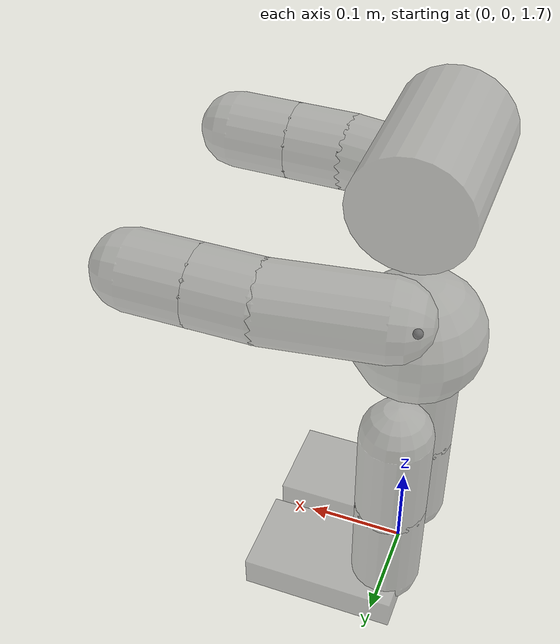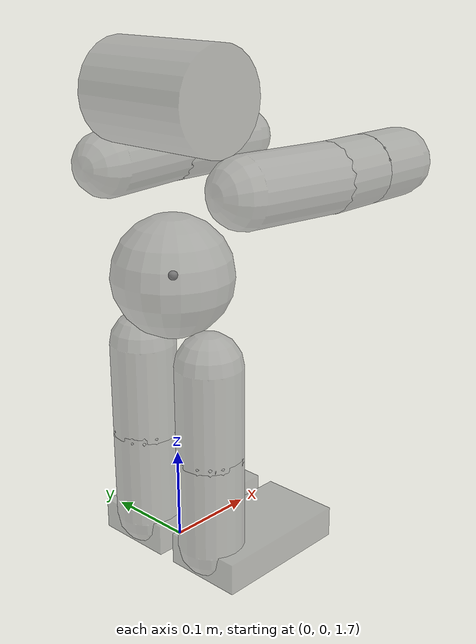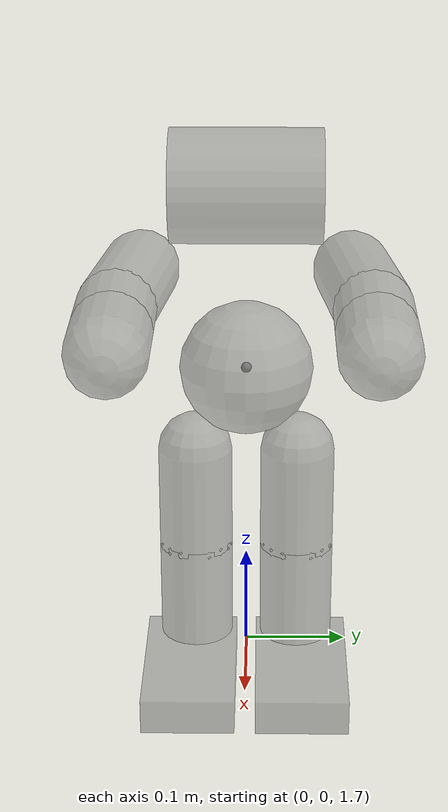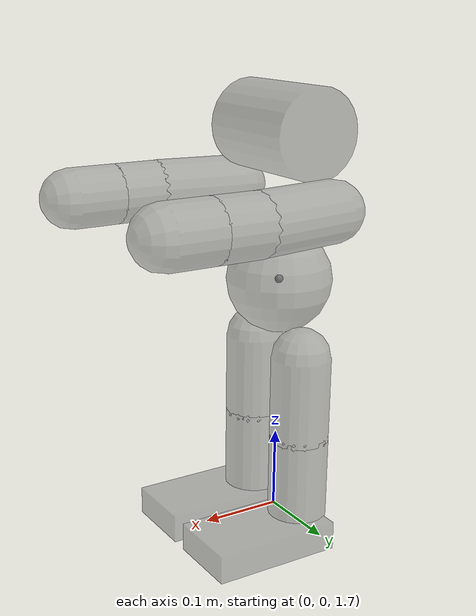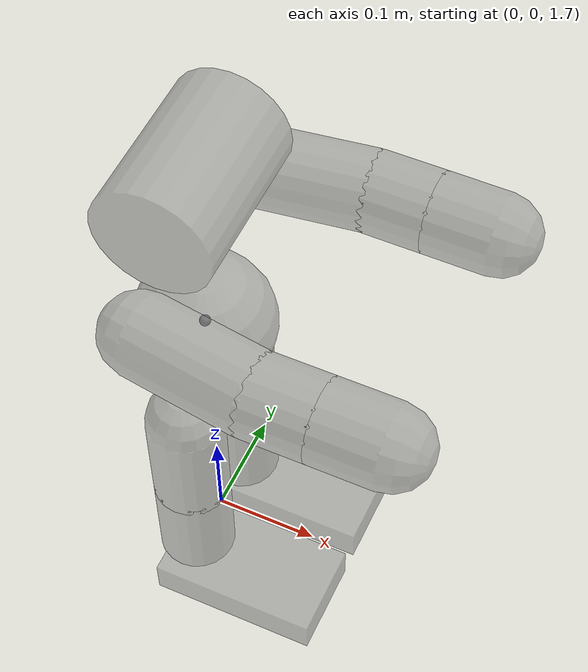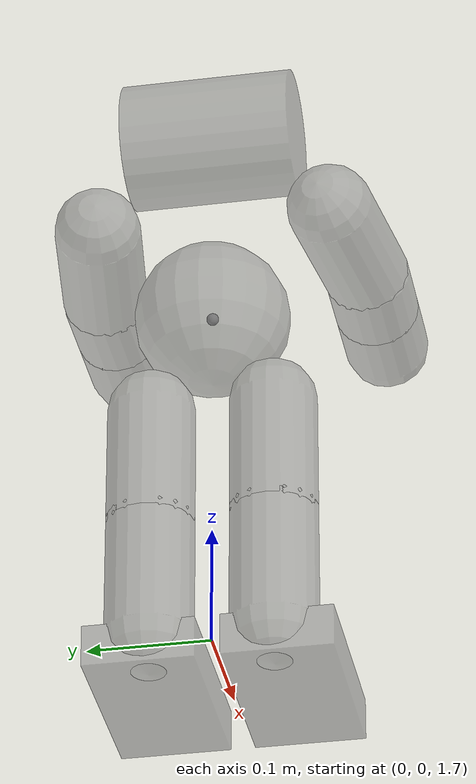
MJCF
<mujoco model="NaoV6">
    <option timestep="0.005" integrator="implicitfast">
    </option>
    <asset>
        <texture type="skybox" builtin="gradient" rgb1=".3 .5 .7" rgb2="0 0 0" width="32"
            height="512" />
        <texture name="grid" type="2d" builtin="checker" width="512" height="512" rgb1=".1 .2 .3"
            rgb2=".2 .3 .4" />
        <material name="grid" texture="grid" texrepeat="1 1" texuniform="true" reflectance=".2" />
    </asset>
    <visual>
        <global offwidth="1280" offheight="720" />
    </visual>
    <default>
        <geom rgba="0.5 0.5 0.5 0.5" />
    </default>
    <worldbody>
        <geom name="floor" size="0 0 .05" type="plane" material="grid" condim="3" />
        <light name="top" pos="0 0 2" mode="trackcom" dir="0 0 -1" />
        <body name="torso" pos="0 0 2" euler="0 0 0">
            <freejoint name="root" />
            <camera name="robot" mode="targetbody" target="torso" pos="0 1 0" />
            <geom name="torso" type="sphere" size="0.0642" />
            <site name="imu" />
            <body name="head" pos="0 0 0.1265">
                <inertial pos="0.0544502 0.000377283 0.000506844"
                    quat="0.999831 -0.00839856 -0.00270558 0.0161273" mass="1.90402"
                    diaginertia="0.0037078 0.00362436 0.00247001" />
                <joint name="head_yaw" type="hinge" axis="0 0 1" range="-119.5 119.5" />
                <joint name="head_pitch" type="hinge" axis="0 1 0" range="-38.5 29.5" />
                <geom name="head" type="cylinder" size="0.053 0.0705" euler="90 0 0" pos="0 0 0.053" />
            </body>
            <body name="left_shoulder" pos="0 0.098 0.1">
                <inertial pos="0.00563 -0.02455 0.0033" quat="0.467645 0.46185 0.492756 0.570257"
                    mass="0.15777" diaginertia="0.00027823 0.000242894 8.25818e-05" />
                <joint name="left_shoulder_pitch" type="hinge" axis="0 1 0" range="-119.5 119.5" />
                <joint name="left_shoulder_roll" type="hinge" axis="1 0 0" range="-18 76" />
                <geom name="left_upper_arm" type="capsule" size="0.036" fromto="0 0 0 0.105 0.015 0" />
                <body name="left_elbow" pos="0.105 0.015 0">
                    <inertial pos="0.000206645 -0.0749538 5.58898e-05"
                        quat="0.529427 0.528509 -0.470412 0.468079" mass="1.05536"
                        diaginertia="0.00294834 0.00293619 0.000670399" />
                    <joint name="left_elbow_yaw" type="hinge" axis="1 0 0" range="-119.5 119.5" />
                    <joint name="left_elbow_roll" type="hinge" axis="0 0 1" range="-88.5 -2" />
                    <geom name="left_lower_arm" type="capsule" size="0.036"
                        fromto="0 0 0 0.05595 0 0" />
                    <body name="left_wrist" pos="0.05595 0 0">
                        <inertial pos="-0.000880001 0.00308 0.03434"
                            quat="0.346526 0.607704 0.329318 0.634165" mass="0.18533"
                            diaginertia="0.000137482 0.000131631 6.85194e-05" />
                        <joint name="left_wrist_yaw" type="hinge" axis="1 0 0" range="-104.5 104.5" />
                        <geom name="left_wrist" type="capsule" size="0.036"
                            fromto="0 0 0 0.05775 0 0" />
                    </body>
                </body>
            </body>
            <body name="right_shoulder" pos="0 -0.098 0.1">
                <inertial pos="-0.00563 -0.02455 0.0033" quat="0.556969 0.570609 0.359404 0.484788"
                    mass="0.15777" diaginertia="0.000287934 0.00025515 8.56154e-05" />
                <joint name="right_shoulder_pitch" type="hinge" axis="0 1 0" range="-119.5 119.5" />
                <joint name="right_shoulder_roll" type="hinge" axis="1 0 0" range="-18 76" />
                <geom name="right_upper_arm" type="capsule" size="0.036"
                    fromto="0 0 0 0.105 -0.015 0" />
                <body name="right_elbow" pos="0.105 -0.015 0">
                    <inertial pos="-0.000206645 -0.0749538 5.58898e-05"
                        quat="0.520545 0.522832 -0.476779 0.477871" mass="1.05536"
                        diaginertia="0.00294822 0.00293633 0.000670487" />
                    <joint name="right_elbow_yaw" type="hinge" axis="1 0 0" range="-119.5 119.5" />
                    <joint name="right_elbow_roll" type="hinge" axis="0 0 1" range="-88.5 -2" />
                    <geom name="right_lower_arm" type="capsule" size="0.036"
                        fromto="0 0 0 0.05595 0 0" />
                    <body name="right_wrist" pos="0.05595 0 0">
                        <inertial pos="0.000879999 0.00308 0.03434"
                            quat="0.422432 0.617987 0.303847 0.589339" mass="0.18533"
                            diaginertia="0.000139307 0.000131711 6.66137e-05" />
                        <joint name="right_wrist_yaw" type="hinge" axis="1 0 0" range="-104.5 104.5" />
                        <geom name="right_wrist" type="capsule" size="0.036"
                            fromto="0 0 0 0.05775 0 0" />
                    </body>
                </body>
            </body>
            <body name="left_upper_leg" pos="0 0.05 -0.085" euler="0 90 0">
                <inertial pos="-0.0440868 0.00137481 0.00323819"
                    quat="0.570718 0.584458 0.376298 0.437137" mass="1.75759"
                    diaginertia="0.00271235 0.002536 0.00190276" />
                <joint name="left_hip_yaw_pitch" type="hinge" axis="-1 -1 0" range="-65.62 42.44" />
                <joint name="left_hip_roll" type="hinge" axis="0 0 1" range="-21.74 45.29" />
                <joint name="left_hip_pitch" type="hinge" axis="0 1 0" range="-88 27.73" />
                <geom name="left_upper_leg" type="capsule" size="0.036" fromto="0 0 0 0.105 0 0" />
                <body name="left_lower_leg" pos="0.1 0 0">
                    <inertial pos="-0.0555768 -0.00198465 0.00358653"
                        quat="0.388609 0.504824 0.584388 0.50262" mass="1.27576"
                        diaginertia="0.00254977 0.00235446 0.00153436" />
                    <joint name="left_knee_pitch" type="hinge" axis="0 1 0" range="-5.29 121.04" />
                    <geom name="left_lower_leg" type="capsule" size="0.036" fromto="0 0 0 0.105 0 0" />
                    <body name="left_foot" pos="0.1029 0 0" euler="0 -90 0">
                        <inertial pos="-0.0283705 -0.00643226 0.0232425"
                            quat="0.978902 -0.00086125 0.000229755 0.204327" mass="0.67584"
                            diaginertia="0.00151112 0.00147942 0.000810478" />
                        <joint name="left_ankle_pitch" type="hinge" axis="0 1 0"
                            range="-68.15 52.86" />
                        <joint name="left_ankle_roll" type="hinge" axis="1 0 0" range="-22.79 44.06" />
                        <geom name="left_foot" type="box" size="0.08 0.045 0.0175"
                            pos="0.06 0.005 -0.0175" />
                    </body>
                </body>
            </body>
            <body name="right_upper_leg" pos="0 -0.05 -0.085" euler="0 90 0">
                <inertial pos="-0.0440868 0.00137481 -0.00323819"
                    quat="0.48943 0.660626 0.399823 0.405184" mass="1.75759"
                    diaginertia="0.00271296 0.00255859 0.00188171" />
                <joint name="right_hip_yaw_pitch" type="hinge" axis="-1 1 0" range="-42.44 65.62" />
                <joint name="right_hip_roll" type="hinge" axis="0 0 1" range="-45.29 21.74 " />
                <joint name="right_hip_pitch" type="hinge" axis="0 1 0" range="-88 27.73" />
                <geom name="right_upper_leg" type="capsule" size="0.036" fromto="0 0 0 0.105 0 0" />
                <body name="right_lower_leg" pos="0.1 0 0">
                    <inertial pos="-0.0555768 -0.00198465 -0.00358653"
                        quat="0.491399 0.391143 0.464231 0.624519" mass="1.27576"
                        diaginertia="0.00255207 0.00238362 0.0015015" />
                    <joint name="right_knee_pitch" type="hinge" axis="0 1 0" range="-5.9 121.04" />
                    <!--
 The Fuck?! they are not the same as the left leg?
-->
                    <geom name="right_lower_leg" type="capsule" size="0.036"
                        fromto="0 0 0 0.105 0 0" />
                    <body name="right_foot" pos="0.1029 0 0" euler="0 -90 0">
                        <inertial pos="-0.0283705 0.00643194 0.0232424"
                            quat="0.980132 0.000741722 0.000382099 -0.198346" mass="0.67584"
                            diaginertia="0.00151073 0.0014788 0.000809756" />
                        <joint name="right_ankle_pitch" type="hinge" axis="0 1 0"
                            range="-67.97 53.4" />
                        <joint name="right_ankle_roll" type="hinge" axis="1 0 0" range="-44.06 22.8" />
                        <geom name="right_foot" type="box" size="0.08 0.045 0.0175"
                            pos="0.06 -0.005 -0.0175" />
                    </body>
                </body>
            </body>
        </body>
    </worldbody>
    <equality>
        <joint joint1="left_hip_yaw_pitch" joint2="right_hip_yaw_pitch" polycoef="0 -1 0 0 0" />
    </equality>
    <contact>
        <exclude body1="left_wrist" body2="left_shoulder" />
        <exclude body1="right_wrist" body2="right_shoulder" />
    </contact>
    <sensor>
        <accelerometer name="accelerometer" site="imu" />
        <gyro name="gyroscope" site="imu" />
        <jointpos name="head_yaw" joint="head_yaw" />
        <jointpos name="head_pitch" joint="head_pitch" />
        <jointpos name="left_shoulder_pitch" joint="left_shoulder_pitch" />
        <jointpos name="left_shoulder_roll" joint="left_shoulder_roll" />
        <jointpos name="left_elbow_yaw" joint="left_elbow_yaw" />
        <jointpos name="left_elbow_roll" joint="left_elbow_roll" />
        <jointpos name="left_wrist_yaw" joint="left_wrist_yaw" />
        <jointpos name="right_shoulder_pitch" joint="right_shoulder_pitch" />
        <jointpos name="right_shoulder_roll" joint="right_shoulder_roll" />
        <jointpos name="right_elbow_yaw" joint="right_elbow_yaw" />
        <jointpos name="right_elbow_roll" joint="right_elbow_roll" />
        <jointpos name="right_wrist_yaw" joint="right_wrist_yaw" />
        <jointpos name="left_hip_yaw_pitch" joint="left_hip_yaw_pitch" />
        <jointpos name="left_hip_roll" joint="left_hip_roll" />
        <jointpos name="left_hip_pitch" joint="left_hip_pitch" />
        <jointpos name="left_knee_pitch" joint="left_knee_pitch" />
        <jointpos name="left_ankle_pitch" joint="left_ankle_pitch" />
        <jointpos name="left_ankle_roll" joint="left_ankle_roll" />
        <jointpos name="right_hip_yaw_pitch" joint="right_hip_yaw_pitch" />
        <jointpos name="right_hip_roll" joint="right_hip_roll" />
        <jointpos name="right_hip_pitch" joint="right_hip_pitch" />
        <jointpos name="right_knee_pitch" joint="right_knee_pitch" />
        <jointpos name="right_ankle_pitch" joint="right_ankle_pitch" />
        <jointpos name="right_ankle_roll" joint="right_ankle_roll" />
    </sensor>
    <keyframe>
        <!--

    The values below are split into rows for readability:
      torso position
      torso orientation
      head
      left arm
      right arm
      left leg
      right leg

-->
        <key name="zero" qpos="0 0 2.0 1 0 0 0 0 0 0 0 0 0 0 0 0 0 0 0 0 0 0 0 0 0 0 0 0 0 0 0" />
        <key name="ready"
            qpos="0 0 0.3 1 0 0 0 0 0 1.57 0.1 0 0 0 1.57 0.1 0 0 0 0 0 -0.25 0.35 -0.1 0 0 0 -0.25 0.35 -0.1 0" />
        <key name="face-down"
            qpos="0 0 0.064 0.64 0.03 0.77 -0.02 0 -0.4 1.33 0.15 0.19 -0.08 0.1 1.31 0.15 0.19 -0.08 -0.05 0 0 -0.07 0.29 -0.04 0.02 0 0.04 -0.1 0.31 0.04 0" />
    </keyframe>
</mujoco>
